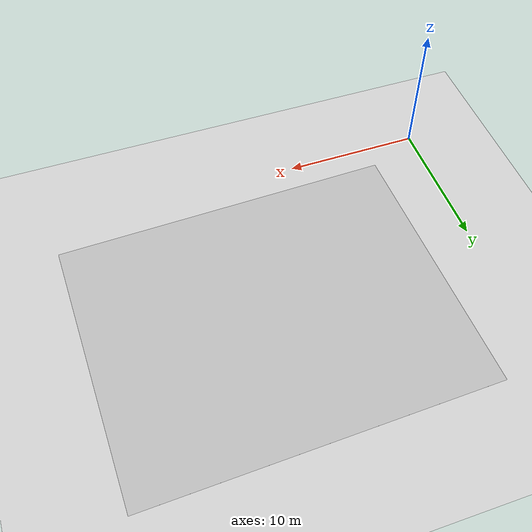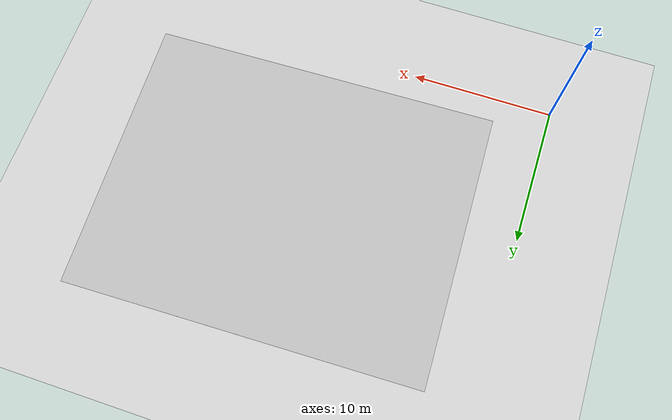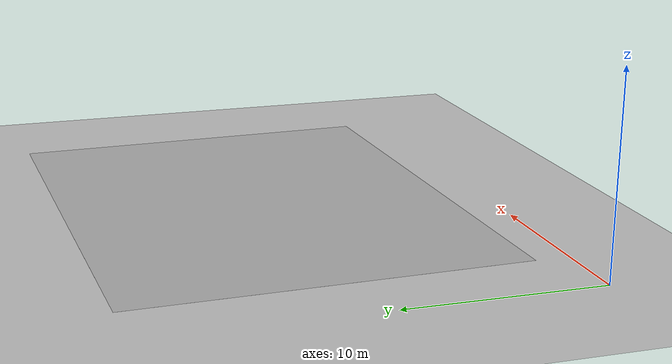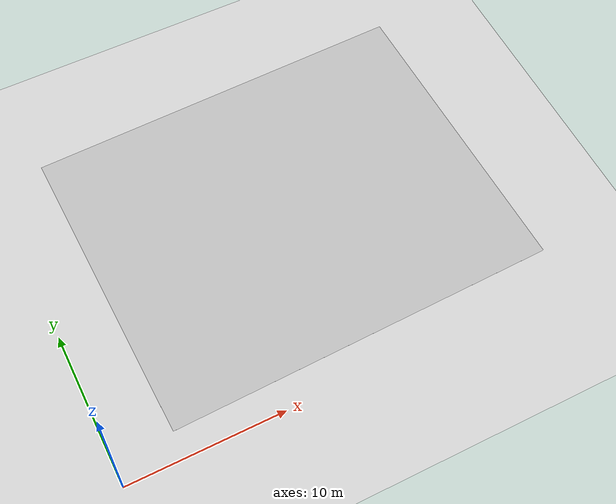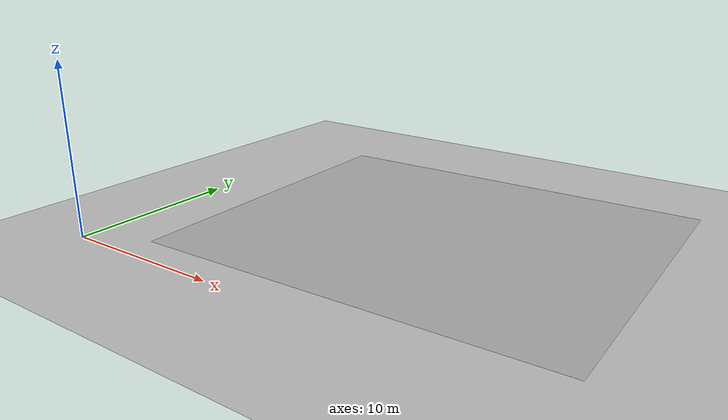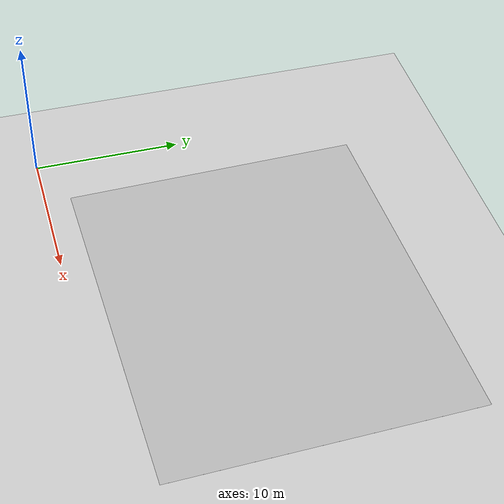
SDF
<sdf version="1.4">
 <world name="default">
  <light name="sun" type="directional">
   <pose>0 0 10 0 -0 0</pose>
   <diffuse>0.8 0.8 0.8 1</diffuse>
   <specular>0.2 0.2 0.2 1</specular>
   <attenuation>
    <range>1000</range>
    <constant>0.9</constant>
    <linear>0.01</linear>
    <quadratic>0.001</quadratic>
   </attenuation>
   <direction>-0.5 0.1 -0.9</direction>
  </light>
  <model name="ground_plane">
   <static>1</static>
   <link name="link">
    <collision name="collision">
     <geometry><plane><normal>0 0 1</normal><size>100 100</size></plane></geometry>
     <surface><friction><ode><mu>100</mu><mu2>50</mu2></ode></friction></surface>
    </collision>
    <visual name="visual">
     <cast_shadows>0</cast_shadows>
     <geometry><plane><normal>0 0 1</normal><size>100 100</size></plane></geometry>
     <material>
      <script><uri>file://media/materials/scripts/gazebo.material</uri><name>Gazebo/Grey</name></script>
     </material>
    </visual>
    <velocity_decay><linear>0</linear><angular>0</angular></velocity_decay>
   </link>
  </model>
  <physics type="ode">
   <max_step_size>0.001</max_step_size>
   <real_time_factor>1</real_time_factor>
   <real_time_update_rate>1000</real_time_update_rate>
   <gravity>0 0 -9.8</gravity>
  </physics>
  <scene><ambient>0.4 0.4 0.4 1</ambient><background>0.7 0.7 0.7 1</background><shadows>1</shadows></scene>
  <spherical_coordinates>
   <surface_model>EARTH_WGS84</surface_model>
   <latitude_deg>0</latitude_deg>
   <longitude_deg>0</longitude_deg>
   <elevation>0</elevation>
   <heading_deg>0</heading_deg>
  </spherical_coordinates>
  <model name="marker_0">
   <static>0</static>
   <link name="marker">
    <inertial>
     <mass>0.1</mass>
     <inertia><ixx>0</ixx><ixy>0</ixy><ixz>0</ixz><iyy>0</iyy><iyz>0</iyz><izz>0</izz></inertia>
    </inertial>
    <visual name="visual">
     <geometry><box><size>20 25 0.001</size></box></geometry>
     <material>
      <script>
       <uri>model://materials/scripts</uri>
       <uri>model://materials/textures</uri>
       <name>marker_0</name>
      </script>
     </material>
    </visual>
    <collision name="collision"><geometry><box><size>0.15 0.15 0.002</size></box></geometry></collision>
    <self_collide>1</self_collide>
    <velocity_decay><linear>0</linear><angular>0</angular></velocity_decay>
   </link>
   <pose>15.9678 12.0455 0.001 1e-06 -1.05879e-22 1.5963</pose>
  </model>
 </world>
</sdf>
